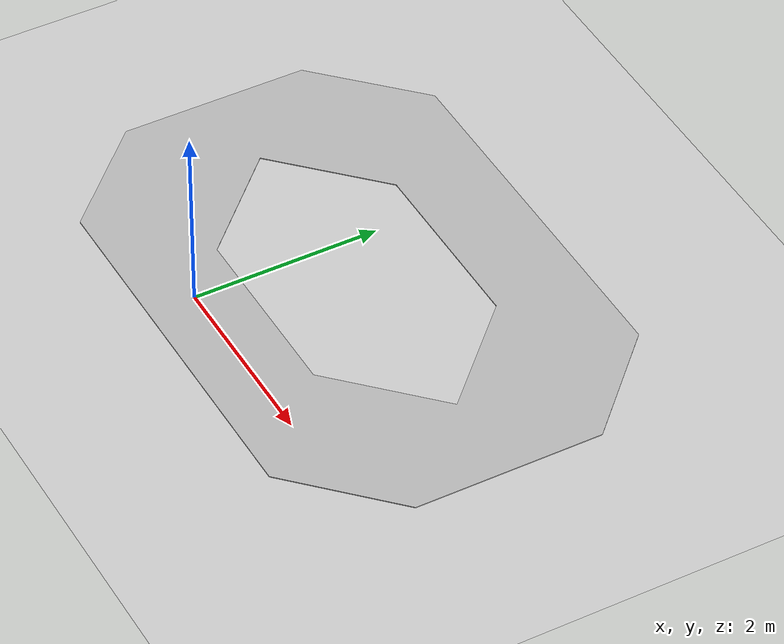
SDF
<sdf version="1.4">
  <world name="default">

    <!-- global light -->
    <include>
      <uri>model://sun</uri>
    </include>

    <!-- ground plane -->
    <include>
      <uri>model://ground_plane</uri>
    </include>

    <include>
      <uri>model://A2se_mappe</uri>
      <pose>0 3.0 -0.005 0 0 -1.5707963267948966</pose>
    </include>

  </world>

</sdf>

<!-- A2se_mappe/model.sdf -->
<sdf version="1.5">
  <model name="A2se_Mappe">
    <static>true</static>
    <link name="link">
      <collision name="collision">
        <geometry>
          <mesh>
            <scale>1 1 1</scale>
            <uri>model://A2se_mappe/meshes/GanzeStrasse.dae</uri>
          </mesh>
        </geometry>
      </collision>
      <visual name="visual">
        <geometry>
          <mesh>
            <scale>1 1 1</scale>
            <uri>model://A2se_mappe/meshes/GanzeStrasse.dae</uri>
          </mesh>
        </geometry>
      </visual>
    </link>
  </model>
</sdf>
